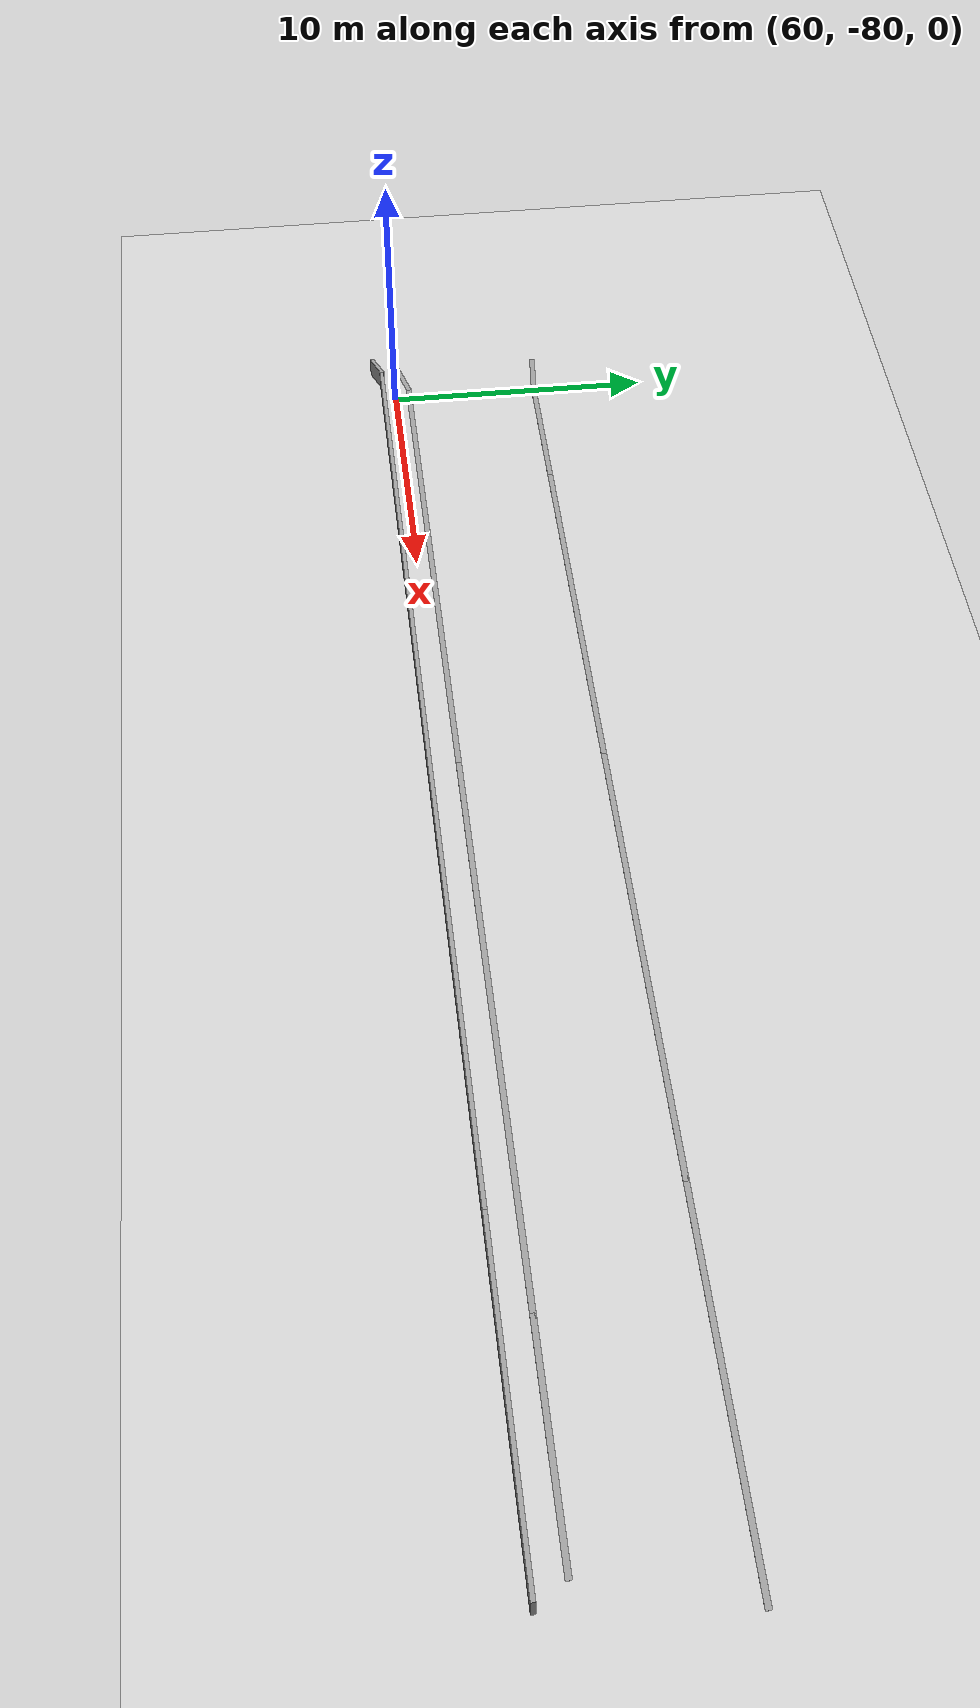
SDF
<sdf version="1.6">
 <world name="default">
  <model name="ground_plane">
   <static>1</static>
   <link name="link">
    <collision name="collision">
     <geometry><plane><normal>0 0 1</normal><size>100 100</size></plane></geometry>
     <surface>
      <contact><collide_bitmask>65535</collide_bitmask></contact>
      <friction><ode><mu>100</mu><mu2>50</mu2></ode></friction>
     </surface>
    </collision>
    <visual name="visual">
     <cast_shadows>0</cast_shadows>
     <geometry><plane><normal>0 0 1</normal><size>100 100</size></plane></geometry>
     <material>
      <script><uri>file://media/materials/scripts/gazebo.material</uri><name>Gazebo/Grey</name></script>
     </material>
    </visual>
   </link>
  </model>
  <model name="GercekDuvarSeritKoyu1">
   <link name="Wall_186">
    <pose>25.7961 45.3144 0 0 0 -1.5708</pose>
    <inertial>
     <mass>1</mass>
     <inertia><ixx>1</ixx><ixy>0</ixy><ixz>0</ixz><iyy>1</iyy><iyz>0</iyz><izz>1</izz></inertia>
    </inertial>
    <visual name="Wall_186_Visual">
     <pose>0 0 0.375 0 -0 0</pose>
     <geometry><box><size>12 0.15 0.75</size></box></geometry>
     <material>
      <script><uri>file://media/materials/scripts/gazebo.material</uri><name>Gazebo/Grey</name></script>
      <ambient>0.5 0.5 0.5 1</ambient>
      <shader type="pixel"><normal_map>__default__</normal_map></shader>
      <diffuse>0.7 0.7 0.7 1</diffuse>
      <specular>0.01 0.01 0.01 1</specular>
      <emissive>0 0 0 1</emissive>
     </material>
     <meta><layer>0</layer></meta>
    </visual>
    <collision name="Wall_186_Collision">
     <pose>0 0 0.375 0 -0 0</pose>
     <geometry><box><size>12 0.15 0.75</size></box></geometry>
     <surface>
      <friction>
       <ode><mu>1</mu><mu2>1</mu2><fdir1>0 0 0</fdir1><slip1>0</slip1><slip2>0</slip2></ode>
       <torsional>
        <coefficient>1</coefficient>
        <patch_radius>0</patch_radius>
        <surface_radius>0</surface_radius>
        <use_patch_radius>1</use_patch_radius>
        <ode><slip>0</slip></ode>
       </torsional>
      </friction>
      <bounce><restitution_coefficient>0</restitution_coefficient><threshold>1e+06</threshold></bounce>
      <contact>
       <collide_without_contact>0</collide_without_contact>
       <collide_without_contact_bitmask>1</collide_without_contact_bitmask>
       <collide_bitmask>1</collide_bitmask>
       <ode>
        <soft_cfm>0</soft_cfm>
        <soft_erp>0.2</soft_erp>
        <kp>1e+13</kp>
        <kd>1</kd>
        <max_vel>0.01</max_vel>
        <min_depth>0</min_depth>
       </ode>
       <bullet>
        <split_impulse>1</split_impulse>
        <split_impulse_penetration_threshold>-0.01</split_impulse_penetration_threshold>
        <soft_cfm>0</soft_cfm>
        <soft_erp>0.2</soft_erp>
        <kp>1e+13</kp>
        <kd>1</kd>
       </bullet>
      </contact>
     </surface>
    </collision>
   </link>
   <link name="Wall_188">
    <pose>25.7961 19.2144 0 0 0 -1.5708</pose>
    <inertial>
     <mass>1</mass>
     <inertia><ixx>1</ixx><ixy>0</ixy><ixz>0</ixz><iyy>1</iyy><iyz>0</iyz><izz>1</izz></inertia>
    </inertial>
    <visual name="Wall_188_Visual">
     <pose>0 0 0.375 0 -0 0</pose>
     <geometry><box><size>40.5 0.15 0.75</size></box></geometry>
     <material>
      <script><uri>file://media/materials/scripts/gazebo.material</uri><name>Gazebo/Grey</name></script>
      <ambient>0.5 0.5 0.5 1</ambient>
      <shader type="pixel"><normal_map>__default__</normal_map></shader>
      <diffuse>0.7 0.7 0.7 1</diffuse>
      <specular>0.01 0.01 0.01 1</specular>
      <emissive>0 0 0 1</emissive>
     </material>
     <meta><layer>0</layer></meta>
    </visual>
    <collision name="Wall_188_Collision">
     <pose>0 0 0.375 0 -0 0</pose>
     <geometry><box><size>40.5 0.15 0.75</size></box></geometry>
     <surface>
      <friction>
       <ode><mu>1</mu><mu2>1</mu2><fdir1>0 0 0</fdir1><slip1>0</slip1><slip2>0</slip2></ode>
       <torsional>
        <coefficient>1</coefficient>
        <patch_radius>0</patch_radius>
        <surface_radius>0</surface_radius>
        <use_patch_radius>1</use_patch_radius>
        <ode><slip>0</slip></ode>
       </torsional>
      </friction>
      <bounce><restitution_coefficient>0</restitution_coefficient><threshold>1e+06</threshold></bounce>
      <contact>
       <collide_without_contact>0</collide_without_contact>
       <collide_without_contact_bitmask>1</collide_without_contact_bitmask>
       <collide_bitmask>1</collide_bitmask>
       <ode>
        <soft_cfm>0</soft_cfm>
        <soft_erp>0.2</soft_erp>
        <kp>1e+13</kp>
        <kd>1</kd>
        <max_vel>0.01</max_vel>
        <min_depth>0</min_depth>
       </ode>
       <bullet>
        <split_impulse>1</split_impulse>
        <split_impulse_penetration_threshold>-0.01</split_impulse_penetration_threshold>
        <soft_cfm>0</soft_cfm>
        <soft_erp>0.2</soft_erp>
        <kp>1e+13</kp>
        <kd>1</kd>
       </bullet>
      </contact>
     </surface>
    </collision>
   </link>
   <link name="Wall_195">
    <pose>25.9491 -1.34709 0 0 -0 1.94773</pose>
    <inertial>
     <mass>1</mass>
     <inertia><ixx>1</ixx><ixy>0</ixy><ixz>0</ixz><iyy>1</iyy><iyz>0</iyz><izz>1</izz></inertia>
    </inertial>
    <visual name="Wall_195_Visual">
     <pose>0 0 0.375 0 -0 0</pose>
     <geometry><box><size>0.981682 0.15 0.75</size></box></geometry>
     <material>
      <script><uri>file://media/materials/scripts/gazebo.material</uri><name>Gazebo/Grey</name></script>
      <ambient>0.5 0.5 0.5 1</ambient>
      <shader type="pixel"><normal_map>__default__</normal_map></shader>
      <diffuse>0.7 0.7 0.7 1</diffuse>
      <specular>0.01 0.01 0.01 1</specular>
      <emissive>0 0 0 1</emissive>
     </material>
     <meta><layer>0</layer></meta>
    </visual>
    <collision name="Wall_195_Collision">
     <pose>0 0 0.375 0 -0 0</pose>
     <geometry><box><size>0.981682 0.15 0.75</size></box></geometry>
     <surface>
      <friction>
       <ode><mu>1</mu><mu2>1</mu2><fdir1>0 0 0</fdir1><slip1>0</slip1><slip2>0</slip2></ode>
       <torsional>
        <coefficient>1</coefficient>
        <patch_radius>0</patch_radius>
        <surface_radius>0</surface_radius>
        <use_patch_radius>1</use_patch_radius>
        <ode><slip>0</slip></ode>
       </torsional>
      </friction>
      <bounce><restitution_coefficient>0</restitution_coefficient><threshold>1e+06</threshold></bounce>
      <contact>
       <collide_without_contact>0</collide_without_contact>
       <collide_without_contact_bitmask>1</collide_without_contact_bitmask>
       <collide_bitmask>1</collide_bitmask>
       <ode>
        <soft_cfm>0</soft_cfm>
        <soft_erp>0.2</soft_erp>
        <kp>1e+13</kp>
        <kd>1</kd>
        <max_vel>0.01</max_vel>
        <min_depth>0</min_depth>
       </ode>
       <bullet>
        <split_impulse>1</split_impulse>
        <split_impulse_penetration_threshold>-0.01</split_impulse_penetration_threshold>
        <soft_cfm>0</soft_cfm>
        <soft_erp>0.2</soft_erp>
        <kp>1e+13</kp>
        <kd>1</kd>
       </bullet>
      </contact>
     </surface>
    </collision>
   </link>
   <link name="Wall_509">
    <pose>24.7471 46.4834 0 0 0 -1.5708</pose>
    <visual name="Wall_509_Visual">
     <pose>0 0 0.005 0 -0 0</pose>
     <geometry><box><size>8.05045 0.2 0.01</size></box></geometry>
     <material>
      <script><uri>file://media/materials/scripts/gazebo.material</uri><name>Gazebo/Grey</name></script>
      <ambient>1 1 1 1</ambient>
      <shader type="pixel"/>
     </material>
     <meta><layer>0</layer></meta>
    </visual>
    <collision name="Wall_509_Collision">
     <pose>0 0 0.005 0 -0 0</pose>
     <geometry><box><size>8.05045 0.2 0.01</size></box></geometry>
     <surface>
      <friction>
       <ode><mu>1</mu><mu2>1</mu2><fdir1>0 0 0</fdir1><slip1>0</slip1><slip2>0</slip2></ode>
       <torsional>
        <coefficient>1</coefficient>
        <patch_radius>0</patch_radius>
        <surface_radius>0</surface_radius>
        <use_patch_radius>1</use_patch_radius>
        <ode><slip>0</slip></ode>
       </torsional>
      </friction>
      <bounce><restitution_coefficient>0</restitution_coefficient><threshold>1e+06</threshold></bounce>
      <contact>
       <collide_without_contact>0</collide_without_contact>
       <collide_without_contact_bitmask>1</collide_without_contact_bitmask>
       <collide_bitmask>1</collide_bitmask>
       <ode>
        <soft_cfm>0</soft_cfm>
        <soft_erp>0.2</soft_erp>
        <kp>1e+13</kp>
        <kd>1</kd>
        <max_vel>0.01</max_vel>
        <min_depth>0</min_depth>
       </ode>
       <bullet>
        <split_impulse>1</split_impulse>
        <split_impulse_penetration_threshold>-0.01</split_impulse_penetration_threshold>
        <soft_cfm>0</soft_cfm>
        <soft_erp>0.2</soft_erp>
        <kp>1e+13</kp>
        <kd>1</kd>
       </bullet>
      </contact>
     </surface>
    </collision>
   </link>
   <link name="Wall_511">
    <pose>24.7471 31.5084 0 0 0 -1.5708</pose>
    <visual name="Wall_511_Visual">
     <pose>0 0 0.005 0 -0 0</pose>
     <geometry><box><size>22.3005 0.2 0.01</size></box></geometry>
     <material>
      <script><uri>file://media/materials/scripts/gazebo.material</uri><name>Gazebo/Grey</name></script>
      <ambient>1 1 1 1</ambient>
      <shader type="pixel"/>
     </material>
     <meta><layer>0</layer></meta>
    </visual>
    <collision name="Wall_511_Collision">
     <pose>0 0 0.005 0 -0 0</pose>
     <geometry><box><size>22.3005 0.2 0.01</size></box></geometry>
     <surface>
      <friction>
       <ode><mu>1</mu><mu2>1</mu2><fdir1>0 0 0</fdir1><slip1>0</slip1><slip2>0</slip2></ode>
       <torsional>
        <coefficient>1</coefficient>
        <patch_radius>0</patch_radius>
        <surface_radius>0</surface_radius>
        <use_patch_radius>1</use_patch_radius>
        <ode><slip>0</slip></ode>
       </torsional>
      </friction>
      <bounce><restitution_coefficient>0</restitution_coefficient><threshold>1e+06</threshold></bounce>
      <contact>
       <collide_without_contact>0</collide_without_contact>
       <collide_without_contact_bitmask>1</collide_without_contact_bitmask>
       <collide_bitmask>1</collide_bitmask>
       <ode>
        <soft_cfm>0</soft_cfm>
        <soft_erp>0.2</soft_erp>
        <kp>1e+13</kp>
        <kd>1</kd>
        <max_vel>0.01</max_vel>
        <min_depth>0</min_depth>
       </ode>
       <bullet>
        <split_impulse>1</split_impulse>
        <split_impulse_penetration_threshold>-0.01</split_impulse_penetration_threshold>
        <soft_cfm>0</soft_cfm>
        <soft_erp>0.2</soft_erp>
        <kp>1e+13</kp>
        <kd>1</kd>
       </bullet>
      </contact>
     </surface>
    </collision>
   </link>
   <link name="Wall_514">
    <pose>24.7471 9.90841 0 0 0 -1.5708</pose>
    <visual name="Wall_514_Visual">
     <pose>0 0 0.005 0 -0 0</pose>
     <geometry><box><size>21.3005 0.2 0.01</size></box></geometry>
     <material>
      <script><uri>file://media/materials/scripts/gazebo.material</uri><name>Gazebo/Grey</name></script>
      <ambient>1 1 1 1</ambient>
      <shader type="pixel"/>
     </material>
     <meta><layer>0</layer></meta>
    </visual>
    <collision name="Wall_514_Collision">
     <pose>0 0 0.005 0 -0 0</pose>
     <geometry><box><size>21.3005 0.2 0.01</size></box></geometry>
     <surface>
      <friction>
       <ode><mu>1</mu><mu2>1</mu2><fdir1>0 0 0</fdir1><slip1>0</slip1><slip2>0</slip2></ode>
       <torsional>
        <coefficient>1</coefficient>
        <patch_radius>0</patch_radius>
        <surface_radius>0</surface_radius>
        <use_patch_radius>1</use_patch_radius>
        <ode><slip>0</slip></ode>
       </torsional>
      </friction>
      <bounce><restitution_coefficient>0</restitution_coefficient><threshold>1e+06</threshold></bounce>
      <contact>
       <collide_without_contact>0</collide_without_contact>
       <collide_without_contact_bitmask>1</collide_without_contact_bitmask>
       <collide_bitmask>1</collide_bitmask>
       <ode>
        <soft_cfm>0</soft_cfm>
        <soft_erp>0.2</soft_erp>
        <kp>1e+13</kp>
        <kd>1</kd>
        <max_vel>0.01</max_vel>
        <min_depth>0</min_depth>
       </ode>
       <bullet>
        <split_impulse>1</split_impulse>
        <split_impulse_penetration_threshold>-0.01</split_impulse_penetration_threshold>
        <soft_cfm>0</soft_cfm>
        <soft_erp>0.2</soft_erp>
        <kp>1e+13</kp>
        <kd>1</kd>
       </bullet>
      </contact>
     </surface>
    </collision>
   </link>
   <link name="Wall_523">
    <pose>25.1776 -2.19809 0 0 -0 1.85856</pose>
    <visual name="Wall_523_Visual">
     <pose>0 0 0.005 0 -0 0</pose>
     <geometry><box><size>1.05621 0.2 0.01</size></box></geometry>
     <material>
      <script><uri>file://media/materials/scripts/gazebo.material</uri><name>Gazebo/Grey</name></script>
      <ambient>1 1 1 1</ambient>
      <shader type="pixel"/>
     </material>
     <meta><layer>0</layer></meta>
    </visual>
    <collision name="Wall_523_Collision">
     <pose>0 0 0.005 0 -0 0</pose>
     <geometry><box><size>1.05621 0.2 0.01</size></box></geometry>
     <surface>
      <friction>
       <ode><mu>1</mu><mu2>1</mu2><fdir1>0 0 0</fdir1><slip1>0</slip1><slip2>0</slip2></ode>
       <torsional>
        <coefficient>1</coefficient>
        <patch_radius>0</patch_radius>
        <surface_radius>0</surface_radius>
        <use_patch_radius>1</use_patch_radius>
        <ode><slip>0</slip></ode>
       </torsional>
      </friction>
      <bounce><restitution_coefficient>0</restitution_coefficient><threshold>1e+06</threshold></bounce>
      <contact>
       <collide_without_contact>0</collide_without_contact>
       <collide_without_contact_bitmask>1</collide_without_contact_bitmask>
       <collide_bitmask>1</collide_bitmask>
       <ode>
        <soft_cfm>0</soft_cfm>
        <soft_erp>0.2</soft_erp>
        <kp>1e+13</kp>
        <kd>1</kd>
        <max_vel>0.01</max_vel>
        <min_depth>0</min_depth>
       </ode>
       <bullet>
        <split_impulse>1</split_impulse>
        <split_impulse_penetration_threshold>-0.01</split_impulse_penetration_threshold>
        <soft_cfm>0</soft_cfm>
        <soft_erp>0.2</soft_erp>
        <kp>1e+13</kp>
        <kd>1</kd>
       </bullet>
      </contact>
     </surface>
    </collision>
   </link>
   <link name="Wall_524">
    <pose>24.9016 -1.21459 0 0 -0 1.83417</pose>
    <visual name="Wall_524_Visual">
     <pose>0 0 0.005 0 -0 0</pose>
     <geometry><box><size>1.38693 0.2 0.01</size></box></geometry>
     <material>
      <script><uri>file://media/materials/scripts/gazebo.material</uri><name>Gazebo/Grey</name></script>
      <ambient>1 1 1 1</ambient>
      <shader type="pixel"/>
     </material>
     <meta><layer>0</layer></meta>
    </visual>
    <collision name="Wall_524_Collision">
     <pose>0 0 0.005 0 -0 0</pose>
     <geometry><box><size>1.38693 0.2 0.01</size></box></geometry>
     <surface>
      <friction>
       <ode><mu>1</mu><mu2>1</mu2><fdir1>0 0 0</fdir1><slip1>0</slip1><slip2>0</slip2></ode>
       <torsional>
        <coefficient>1</coefficient>
        <patch_radius>0</patch_radius>
        <surface_radius>0</surface_radius>
        <use_patch_radius>1</use_patch_radius>
        <ode><slip>0</slip></ode>
       </torsional>
      </friction>
      <bounce><restitution_coefficient>0</restitution_coefficient><threshold>1e+06</threshold></bounce>
      <contact>
       <collide_without_contact>0</collide_without_contact>
       <collide_without_contact_bitmask>1</collide_without_contact_bitmask>
       <collide_bitmask>1</collide_bitmask>
       <ode>
        <soft_cfm>0</soft_cfm>
        <soft_erp>0.2</soft_erp>
        <kp>1e+13</kp>
        <kd>1</kd>
        <max_vel>0.01</max_vel>
        <min_depth>0</min_depth>
       </ode>
       <bullet>
        <split_impulse>1</split_impulse>
        <split_impulse_penetration_threshold>-0.01</split_impulse_penetration_threshold>
        <soft_cfm>0</soft_cfm>
        <soft_erp>0.2</soft_erp>
        <kp>1e+13</kp>
        <kd>1</kd>
       </bullet>
      </contact>
     </surface>
    </collision>
   </link>
   <link name="Wall_537">
    <pose>19.5576 -0.973087 0 0 -0 1.48983</pose>
    <visual name="Wall_537_Visual">
     <pose>0 0 0.005 0 -0 0</pose>
     <geometry><box><size>2.06715 0.2 0.01</size></box></geometry>
     <material>
      <script><uri>file://media/materials/scripts/gazebo.material</uri><name>Gazebo/Grey</name></script>
      <ambient>1 1 1 1</ambient>
      <shader type="pixel"/>
     </material>
     <meta><layer>0</layer></meta>
    </visual>
    <collision name="Wall_537_Collision">
     <pose>0 0 0.005 0 -0 0</pose>
     <geometry><box><size>2.06715 0.2 0.01</size></box></geometry>
     <surface>
      <friction>
       <ode><mu>1</mu><mu2>1</mu2><fdir1>0 0 0</fdir1><slip1>0</slip1><slip2>0</slip2></ode>
       <torsional>
        <coefficient>1</coefficient>
        <patch_radius>0</patch_radius>
        <surface_radius>0</surface_radius>
        <use_patch_radius>1</use_patch_radius>
        <ode><slip>0</slip></ode>
       </torsional>
      </friction>
      <bounce><restitution_coefficient>0</restitution_coefficient><threshold>1e+06</threshold></bounce>
      <contact>
       <collide_without_contact>0</collide_without_contact>
       <collide_without_contact_bitmask>1</collide_without_contact_bitmask>
       <collide_bitmask>1</collide_bitmask>
       <ode>
        <soft_cfm>0</soft_cfm>
        <soft_erp>0.2</soft_erp>
        <kp>1e+13</kp>
        <kd>1</kd>
        <max_vel>0.01</max_vel>
        <min_depth>0</min_depth>
       </ode>
       <bullet>
        <split_impulse>1</split_impulse>
        <split_impulse_penetration_threshold>-0.01</split_impulse_penetration_threshold>
        <soft_cfm>0</soft_cfm>
        <soft_erp>0.2</soft_erp>
        <kp>1e+13</kp>
        <kd>1</kd>
       </bullet>
      </contact>
     </surface>
    </collision>
   </link>
   <link name="Wall_538">
    <pose>19.6331 2.74441 0 0 -0 1.5708</pose>
    <visual name="Wall_538_Visual">
     <pose>0 0 0.005 0 -0 0</pose>
     <geometry><box><size>5.77376 0.2 0.01</size></box></geometry>
     <material>
      <script><uri>file://media/materials/scripts/gazebo.material</uri><name>Gazebo/Grey</name></script>
      <ambient>1 1 1 1</ambient>
      <shader type="pixel"/>
     </material>
     <meta><layer>0</layer></meta>
    </visual>
    <collision name="Wall_538_Collision">
     <pose>0 0 0.005 0 -0 0</pose>
     <geometry><box><size>5.77376 0.2 0.01</size></box></geometry>
     <surface>
      <friction>
       <ode><mu>1</mu><mu2>1</mu2><fdir1>0 0 0</fdir1><slip1>0</slip1><slip2>0</slip2></ode>
       <torsional>
        <coefficient>1</coefficient>
        <patch_radius>0</patch_radius>
        <surface_radius>0</surface_radius>
        <use_patch_radius>1</use_patch_radius>
        <ode><slip>0</slip></ode>
       </torsional>
      </friction>
      <bounce><restitution_coefficient>0</restitution_coefficient><threshold>1e+06</threshold></bounce>
      <contact>
       <collide_without_contact>0</collide_without_contact>
       <collide_without_contact_bitmask>1</collide_without_contact_bitmask>
       <collide_bitmask>1</collide_bitmask>
       <ode>
        <soft_cfm>0</soft_cfm>
        <soft_erp>0.2</soft_erp>
        <kp>1e+13</kp>
        <kd>1</kd>
        <max_vel>0.01</max_vel>
        <min_depth>0</min_depth>
       </ode>
       <bullet>
        <split_impulse>1</split_impulse>
        <split_impulse_penetration_threshold>-0.01</split_impulse_penetration_threshold>
        <soft_cfm>0</soft_cfm>
        <soft_erp>0.2</soft_erp>
        <kp>1e+13</kp>
        <kd>1</kd>
       </bullet>
      </contact>
     </surface>
    </collision>
   </link>
   <link name="Wall_540">
    <pose>19.6331 13.0814 0 0 -0 1.5708</pose>
    <visual name="Wall_540_Visual">
     <pose>0 0 0.005 0 -0 0</pose>
     <geometry><box><size>15.2998 0.2 0.01</size></box></geometry>
     <material>
      <script><uri>file://media/materials/scripts/gazebo.material</uri><name>Gazebo/Grey</name></script>
      <ambient>1 1 1 1</ambient>
      <shader type="pixel"/>
     </material>
     <meta><layer>0</layer></meta>
    </visual>
    <collision name="Wall_540_Collision">
     <pose>0 0 0.005 0 -0 0</pose>
     <geometry><box><size>15.2998 0.2 0.01</size></box></geometry>
     <surface>
      <friction>
       <ode><mu>1</mu><mu2>1</mu2><fdir1>0 0 0</fdir1><slip1>0</slip1><slip2>0</slip2></ode>
       <torsional>
        <coefficient>1</coefficient>
        <patch_radius>0</patch_radius>
        <surface_radius>0</surface_radius>
        <use_patch_radius>1</use_patch_radius>
        <ode><slip>0</slip></ode>
       </torsional>
      </friction>
      <bounce><restitution_coefficient>0</restitution_coefficient><threshold>1e+06</threshold></bounce>
      <contact>
       <collide_without_contact>0</collide_without_contact>
       <collide_without_contact_bitmask>1</collide_without_contact_bitmask>
       <collide_bitmask>1</collide_bitmask>
       <ode>
        <soft_cfm>0</soft_cfm>
        <soft_erp>0.2</soft_erp>
        <kp>1e+13</kp>
        <kd>1</kd>
        <max_vel>0.01</max_vel>
        <min_depth>0</min_depth>
       </ode>
       <bullet>
        <split_impulse>1</split_impulse>
        <split_impulse_penetration_threshold>-0.01</split_impulse_penetration_threshold>
        <soft_cfm>0</soft_cfm>
        <soft_erp>0.2</soft_erp>
        <kp>1e+13</kp>
        <kd>1</kd>
       </bullet>
      </contact>
     </surface>
    </collision>
   </link>
   <link name="Wall_542">
    <pose>19.6331 29.5564 0 0 -0 1.5708</pose>
    <visual name="Wall_542_Visual">
     <pose>0 0 0.005 0 -0 0</pose>
     <geometry><box><size>18.0498 0.2 0.01</size></box></geometry>
     <material>
      <script><uri>file://media/materials/scripts/gazebo.material</uri><name>Gazebo/Grey</name></script>
      <ambient>1 1 1 1</ambient>
      <shader type="pixel"/>
     </material>
     <meta><layer>0</layer></meta>
    </visual>
    <collision name="Wall_542_Collision">
     <pose>0 0 0.005 0 -0 0</pose>
     <geometry><box><size>18.0498 0.2 0.01</size></box></geometry>
     <surface>
      <friction>
       <ode><mu>1</mu><mu2>1</mu2><fdir1>0 0 0</fdir1><slip1>0</slip1><slip2>0</slip2></ode>
       <torsional>
        <coefficient>1</coefficient>
        <patch_radius>0</patch_radius>
        <surface_radius>0</surface_radius>
        <use_patch_radius>1</use_patch_radius>
        <ode><slip>0</slip></ode>
       </torsional>
      </friction>
      <bounce><restitution_coefficient>0</restitution_coefficient><threshold>1e+06</threshold></bounce>
      <contact>
       <collide_without_contact>0</collide_without_contact>
       <collide_without_contact_bitmask>1</collide_without_contact_bitmask>
       <collide_bitmask>1</collide_bitmask>
       <ode>
        <soft_cfm>0</soft_cfm>
        <soft_erp>0.2</soft_erp>
        <kp>1e+13</kp>
        <kd>1</kd>
        <max_vel>0.01</max_vel>
        <min_depth>0</min_depth>
       </ode>
       <bullet>
        <split_impulse>1</split_impulse>
        <split_impulse_penetration_threshold>-0.01</split_impulse_penetration_threshold>
        <soft_cfm>0</soft_cfm>
        <soft_erp>0.2</soft_erp>
        <kp>1e+13</kp>
        <kd>1</kd>
       </bullet>
      </contact>
     </surface>
    </collision>
   </link>
   <link name="Wall_544">
    <pose>19.6331 45.1564 0 0 -0 1.5708</pose>
    <visual name="Wall_544_Visual">
     <pose>0 0 0.005 0 -0 0</pose>
     <geometry><box><size>13.5498 0.2 0.01</size></box></geometry>
     <material>
      <script><uri>file://media/materials/scripts/gazebo.material</uri><name>Gazebo/Grey</name></script>
      <ambient>1 1 1 1</ambient>
      <shader type="pixel"/>
     </material>
     <meta><layer>0</layer></meta>
    </visual>
    <collision name="Wall_544_Collision">
     <pose>0 0 0.005 0 -0 0</pose>
     <geometry><box><size>13.5498 0.2 0.01</size></box></geometry>
     <surface>
      <friction>
       <ode><mu>1</mu><mu2>1</mu2><fdir1>0 0 0</fdir1><slip1>0</slip1><slip2>0</slip2></ode>
       <torsional>
        <coefficient>1</coefficient>
        <patch_radius>0</patch_radius>
        <surface_radius>0</surface_radius>
        <use_patch_radius>1</use_patch_radius>
        <ode><slip>0</slip></ode>
       </torsional>
      </friction>
      <bounce><restitution_coefficient>0</restitution_coefficient><threshold>1e+06</threshold></bounce>
      <contact>
       <collide_without_contact>0</collide_without_contact>
       <collide_without_contact_bitmask>1</collide_without_contact_bitmask>
       <collide_bitmask>1</collide_bitmask>
       <ode>
        <soft_cfm>0</soft_cfm>
        <soft_erp>0.2</soft_erp>
        <kp>1e+13</kp>
        <kd>1</kd>
        <max_vel>0.01</max_vel>
        <min_depth>0</min_depth>
       </ode>
       <bullet>
        <split_impulse>1</split_impulse>
        <split_impulse_penetration_threshold>-0.01</split_impulse_penetration_threshold>
        <soft_cfm>0</soft_cfm>
        <soft_erp>0.2</soft_erp>
        <kp>1e+13</kp>
        <kd>1</kd>
       </bullet>
      </contact>
     </surface>
    </collision>
   </link>
   <static>1</static>
   <pose>59.9324 -54.7034 -0 0 0 -1.5695</pose>
  </model>
 </world>
</sdf>
